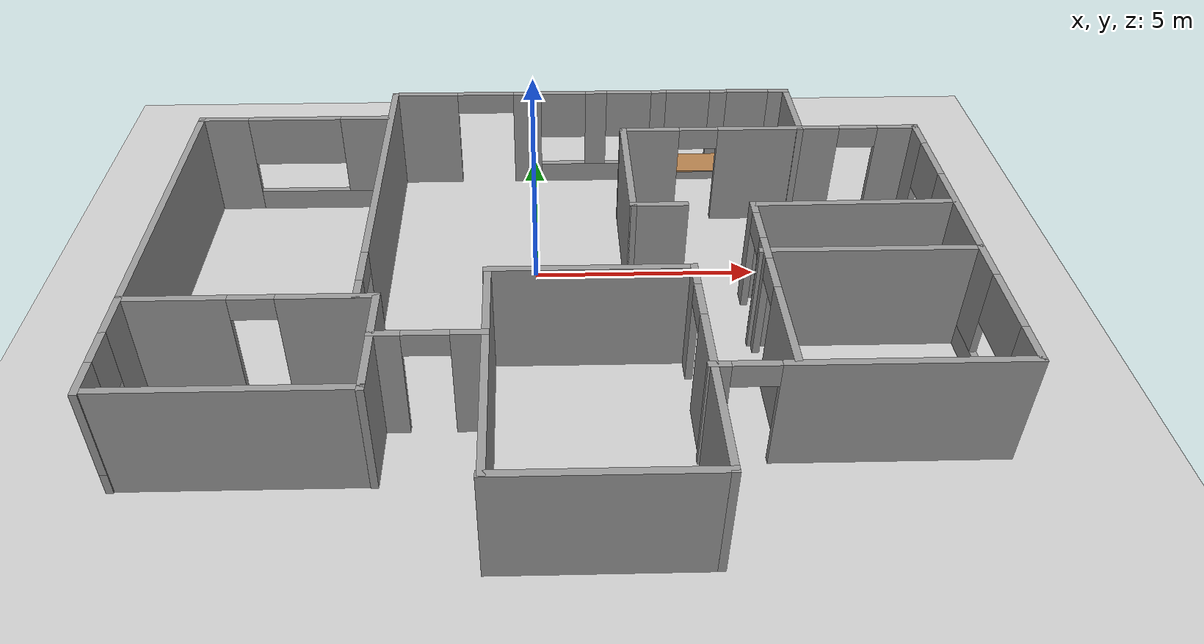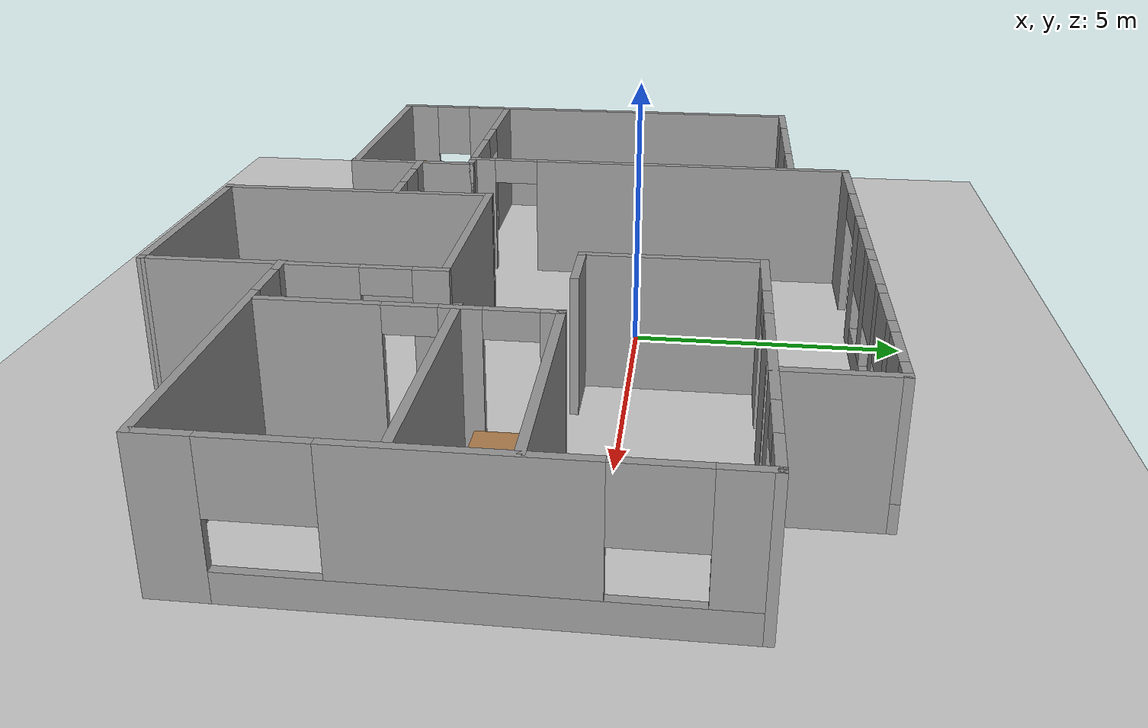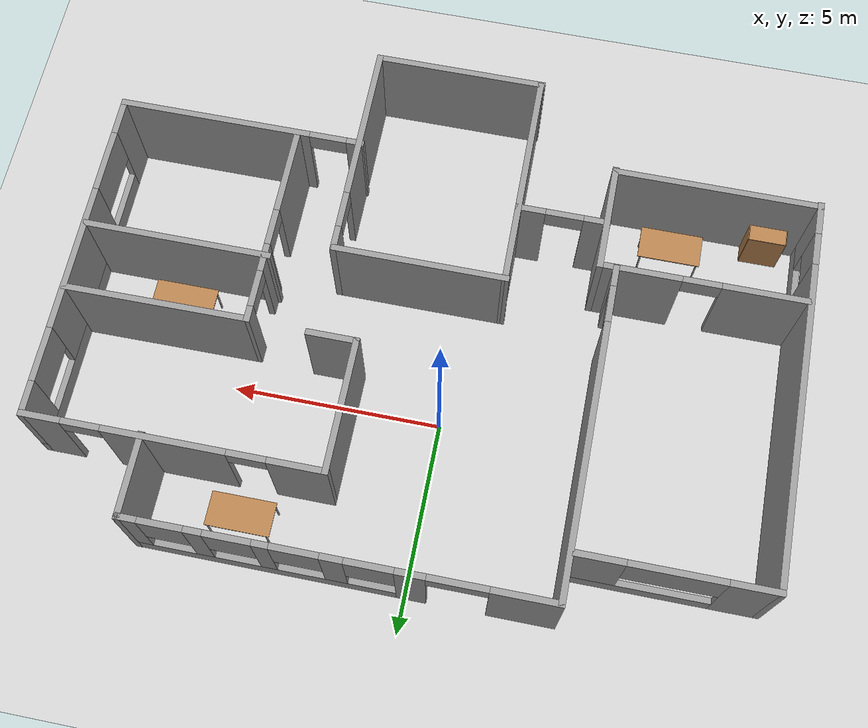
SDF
<sdf version="1.7">
 <world name="default">
  <light name="sun" type="directional">
   <pose>0 0 10 0 -0 0</pose>
   <diffuse>0.8 0.8 0.8 1</diffuse>
   <specular>0.2 0.2 0.2 1</specular>
   <attenuation>
    <range>1000</range>
    <constant>0.9</constant>
    <linear>0.01</linear>
    <quadratic>0.001</quadratic>
   </attenuation>
   <direction>-0.5 0.1 -0.9</direction>
   <spot><inner_angle>0</inner_angle><outer_angle>0</outer_angle><falloff>0</falloff></spot>
  </light>
  <model name="ground_plane">
   <static>1</static>
   <link name="link">
    <collision name="collision">
     <geometry><plane><normal>0 0 1</normal><size>100 100</size></plane></geometry>
     <surface><friction><ode><mu>100</mu><mu2>50</mu2></ode></friction></surface>
    </collision>
    <visual name="visual">
     <cast_shadows>0</cast_shadows>
     <geometry><plane><normal>0 0 1</normal><size>100 100</size></plane></geometry>
     <material>
      <script><uri>file://media/materials/scripts/gazebo.material</uri><name>Gazebo/Grey</name></script>
     </material>
    </visual>
   </link>
  </model>
  <gravity>0 0 -9.8</gravity>
  <magnetic_field>6e-06 2.3e-05 -4.2e-05</magnetic_field>
  <atmosphere type="adiabatic"/>
  <physics type="ode">
   <max_step_size>0.001</max_step_size>
   <real_time_factor>1</real_time_factor>
   <real_time_update_rate>1000</real_time_update_rate>
  </physics>
  <scene><ambient>0.4 0.4 0.4 1</ambient><background>0.7 0.7 0.7 1</background><shadows>1</shadows></scene>
  <audio><device>default</device></audio>
  <spherical_coordinates>
   <surface_model>EARTH_WGS84</surface_model>
   <latitude_deg>0</latitude_deg>
   <longitude_deg>0</longitude_deg>
   <elevation>0</elevation>
   <heading_deg>0</heading_deg>
  </spherical_coordinates>
  <model name="Model_House">
   <pose>0.533179 -2.09036 0 0 -0 0</pose>
   <link name="Wall_0">
    <pose>-8.39134 0.43642 0 0 -0 -1.5708</pose>
    <visual name="Wall_0_Visual_0">
     <pose>-0.81077 0 1.25 0 -0 0</pose>
     <geometry><box><size>7.78806 0.15 2.5</size></box></geometry>
     <material>
      <script><uri>file://media/materials/scripts/gazebo.material</uri><name>Gazebo/Grey</name></script>
      <ambient>1 1 1 1</ambient>
     </material>
     <meta><layer>0</layer></meta>
    </visual>
    <collision name="Wall_0_Collision_0">
     <geometry><box><size>7.78806 0.15 2.5</size></box></geometry>
     <pose>-0.81077 0 1.25 0 -0 0</pose>
    </collision>
    <visual name="Wall_0_Visual_1">
     <pose>3.89403 0 0.25 0 -0 0</pose>
     <geometry><box><size>1.62154 0.15 0.5</size></box></geometry>
     <material>
      <script><uri>file://media/materials/scripts/gazebo.material</uri><name>Gazebo/Grey</name></script>
      <ambient>1 1 1 1</ambient>
     </material>
     <meta><layer>0</layer></meta>
    </visual>
    <collision name="Wall_0_Collision_1">
     <geometry><box><size>1.62154 0.15 0.5</size></box></geometry>
     <pose>3.89403 0 0.25 0 -0 0</pose>
    </collision>
    <visual name="Wall_0_Visual_2">
     <pose>4.29403 0 1.5 0 -0 0</pose>
     <geometry><box><size>0.821541 0.15 2</size></box></geometry>
     <material>
      <script><uri>file://media/materials/scripts/gazebo.material</uri><name>Gazebo/Grey</name></script>
      <ambient>1 1 1 1</ambient>
     </material>
     <meta><layer>0</layer></meta>
    </visual>
    <collision name="Wall_0_Collision_2">
     <geometry><box><size>0.821541 0.15 2</size></box></geometry>
     <pose>4.29403 0 1.5 0 -0 0</pose>
    </collision>
    <visual name="Wall_0_Visual_3">
     <pose>3.48326 0 1.9 0 -0 0</pose>
     <geometry><box><size>0.8 0.15 1.2</size></box></geometry>
     <material>
      <script><uri>file://media/materials/scripts/gazebo.material</uri><name>Gazebo/Grey</name></script>
      <ambient>1 1 1 1</ambient>
     </material>
     <meta><layer>0</layer></meta>
    </visual>
    <collision name="Wall_0_Collision_3">
     <geometry><box><size>0.8 0.15 1.2</size></box></geometry>
     <pose>3.48326 0 1.9 0 -0 0</pose>
    </collision>
   </link>
   <link name="Wall_1">
    <collision name="Wall_1_Collision">
     <geometry><box><size>5 0.15 2.5</size></box></geometry>
     <pose>0 0 1.25 0 -0 0</pose>
    </collision>
    <visual name="Wall_1_Visual">
     <pose>0 0 1.25 0 -0 0</pose>
     <geometry><box><size>5 0.15 2.5</size></box></geometry>
     <material>
      <script><uri>file://media/materials/scripts/gazebo.material</uri><name>Gazebo/Grey</name></script>
      <ambient>1 1 1 1</ambient>
     </material>
     <meta><layer>0</layer></meta>
    </visual>
    <pose>-5.96634 -4.16678 0 0 -0 0</pose>
   </link>
   <link name="Wall_11">
    <pose>-2.5001 -2.78084 0 0 -0 0</pose>
    <visual name="Wall_11_Visual_0">
     <pose>-0.809366 0 1.25 0 -0 0</pose>
     <geometry><box><size>0.631268 0.15 2.5</size></box></geometry>
     <material>
      <script><uri>file://media/materials/scripts/gazebo.material</uri><name>Gazebo/Grey</name></script>
      <ambient>1 1 1 1</ambient>
     </material>
     <meta><layer>0</layer></meta>
    </visual>
    <collision name="Wall_11_Collision_0">
     <geometry><box><size>0.631268 0.15 2.5</size></box></geometry>
     <pose>-0.809366 0 1.25 0 -0 0</pose>
    </collision>
    <visual name="Wall_11_Visual_1">
     <pose>0.765634 0 1.25 0 -0 0</pose>
     <geometry><box><size>0.718732 0.15 2.5</size></box></geometry>
     <material>
      <script><uri>file://media/materials/scripts/gazebo.material</uri><name>Gazebo/Grey</name></script>
      <ambient>1 1 1 1</ambient>
     </material>
     <meta><layer>0</layer></meta>
    </visual>
    <collision name="Wall_11_Collision_1">
     <geometry><box><size>0.718732 0.15 2.5</size></box></geometry>
     <pose>0.765634 0 1.25 0 -0 0</pose>
    </collision>
    <visual name="Wall_11_Visual_2">
     <pose>-0.043732 0 2.25 0 -0 0</pose>
     <geometry><box><size>0.9 0.15 0.5</size></box></geometry>
     <material>
      <script><uri>file://media/materials/scripts/gazebo.material</uri><name>Gazebo/Grey</name></script>
      <ambient>1 1 1 1</ambient>
     </material>
     <meta><layer>0</layer></meta>
    </visual>
    <collision name="Wall_11_Collision_2">
     <geometry><box><size>0.9 0.15 0.5</size></box></geometry>
     <pose>-0.043732 0 2.25 0 -0 0</pose>
    </collision>
   </link>
   <link name="Wall_13">
    <collision name="Wall_13_Collision">
     <geometry><box><size>4.1862 0.15 2.5</size></box></geometry>
     <pose>0 0 1.25 0 -0 0</pose>
    </collision>
    <visual name="Wall_13_Visual">
     <pose>0 0 1.25 0 -0 0</pose>
     <geometry><box><size>4.1862 0.15 2.5</size></box></geometry>
     <material>
      <script><uri>file://media/materials/scripts/gazebo.material</uri><name>Gazebo/Grey</name></script>
      <ambient>1 1 1 1</ambient>
     </material>
     <meta><layer>0</layer></meta>
    </visual>
    <pose>0.576441 -6.18566 0 0 -0 3.14159</pose>
   </link>
   <link name="Wall_14">
    <collision name="Wall_14_Collision">
     <geometry><box><size>5.39848 0.15 2.5</size></box></geometry>
     <pose>0 0 1.25 0 -0 0</pose>
    </collision>
    <visual name="Wall_14_Visual">
     <pose>0 0 1.25 0 -0 0</pose>
     <geometry><box><size>5.39848 0.15 2.5</size></box></geometry>
     <material>
      <script><uri>file://media/materials/scripts/gazebo.material</uri><name>Gazebo/Grey</name></script>
      <ambient>1 1 1 1</ambient>
     </material>
     <meta><layer>0</layer></meta>
    </visual>
    <pose>-1.43992 -3.53494 0 0 -0 1.58027</pose>
   </link>
   <link name="Wall_15">
    <collision name="Wall_15_Collision">
     <geometry><box><size>4.1862 0.15 2.5</size></box></geometry>
     <pose>0 0 1.25 0 -0 0</pose>
    </collision>
    <visual name="Wall_15_Visual">
     <pose>0 0 1.25 0 -0 0</pose>
     <geometry><box><size>4.1862 0.15 2.5</size></box></geometry>
     <material>
      <script><uri>file://media/materials/scripts/gazebo.material</uri><name>Gazebo/Grey</name></script>
      <ambient>1 1 1 1</ambient>
     </material>
     <meta><layer>0</layer></meta>
    </visual>
    <pose>0.53018 -0.910818 0 0 -0 0</pose>
   </link>
   <link name="Wall_16">
    <pose>2.58298 -3.54824 0 0 -0 -1.56641</pose>
    <visual name="Wall_16_Visual_0">
     <pose>-2.39537 0 1.25 0 -0 0</pose>
     <geometry><box><size>0.634919 0.15 2.5</size></box></geometry>
     <material>
      <script><uri>file://media/materials/scripts/gazebo.material</uri><name>Gazebo/Grey</name></script>
      <ambient>1 1 1 1</ambient>
     </material>
     <meta><layer>0</layer></meta>
    </visual>
    <collision name="Wall_16_Collision_0">
     <geometry><box><size>0.634919 0.15 2.5</size></box></geometry>
     <pose>-2.39537 0 1.25 0 -0 0</pose>
    </collision>
    <visual name="Wall_16_Visual_1">
     <pose>0.767459 0 1.25 0 -0 0</pose>
     <geometry><box><size>3.89074 0.15 2.5</size></box></geometry>
     <material>
      <script><uri>file://media/materials/scripts/gazebo.material</uri><name>Gazebo/Grey</name></script>
      <ambient>1 1 1 1</ambient>
     </material>
     <meta><layer>0</layer></meta>
    </visual>
    <collision name="Wall_16_Collision_1">
     <geometry><box><size>3.89074 0.15 2.5</size></box></geometry>
     <pose>0.767459 0 1.25 0 -0 0</pose>
    </collision>
    <visual name="Wall_16_Visual_2">
     <pose>-1.62791 0 2.25 0 -0 0</pose>
     <geometry><box><size>0.9 0.15 0.5</size></box></geometry>
     <material>
      <script><uri>file://media/materials/scripts/gazebo.material</uri><name>Gazebo/Grey</name></script>
      <ambient>1 1 1 1</ambient>
     </material>
     <meta><layer>0</layer></meta>
    </visual>
    <collision name="Wall_16_Collision_2">
     <geometry><box><size>0.9 0.15 0.5</size></box></geometry>
     <pose>-1.62791 0 2.25 0 -0 0</pose>
    </collision>
   </link>
   <link name="Wall_18">
    <pose>5.46634 -3.73845 0 0 -0 0</pose>
    <visual name="Wall_18_Visual_0">
     <pose>-2.7872 0 1.25 0 -0 0</pose>
     <geometry><box><size>0.425608 0.15 2.5</size></box></geometry>
     <material>
      <script><uri>file://media/materials/scripts/gazebo.material</uri><name>Gazebo/Grey</name></script>
      <ambient>1 1 1 1</ambient>
     </material>
     <meta><layer>0</layer></meta>
    </visual>
    <collision name="Wall_18_Collision_0">
     <geometry><box><size>0.425608 0.15 2.5</size></box></geometry>
     <pose>-2.7872 0 1.25 0 -0 0</pose>
    </collision>
    <visual name="Wall_18_Visual_1">
     <pose>0.662804 0 1.25 0 -0 0</pose>
     <geometry><box><size>4.67439 0.15 2.5</size></box></geometry>
     <material>
      <script><uri>file://media/materials/scripts/gazebo.material</uri><name>Gazebo/Grey</name></script>
      <ambient>1 1 1 1</ambient>
     </material>
     <meta><layer>0</layer></meta>
    </visual>
    <collision name="Wall_18_Collision_1">
     <geometry><box><size>4.67439 0.15 2.5</size></box></geometry>
     <pose>0.662804 0 1.25 0 -0 0</pose>
    </collision>
    <visual name="Wall_18_Visual_2">
     <pose>-2.12439 0 2.25 0 -0 0</pose>
     <geometry><box><size>0.9 0.15 0.5</size></box></geometry>
     <material>
      <script><uri>file://media/materials/scripts/gazebo.material</uri><name>Gazebo/Grey</name></script>
      <ambient>1 1 1 1</ambient>
     </material>
     <meta><layer>0</layer></meta>
    </visual>
    <collision name="Wall_18_Collision_2">
     <geometry><box><size>0.9 0.15 0.5</size></box></geometry>
     <pose>-2.12439 0 2.25 0 -0 0</pose>
    </collision>
   </link>
   <link name="Wall_19">
    <pose>8.39134 0.311555 0 0 -0 1.5708</pose>
    <visual name="Wall_19_Visual_0">
     <pose>-3.65111 0 1.25 0 -0 0</pose>
     <geometry><box><size>0.947782 0.15 2.5</size></box></geometry>
     <material>
      <script><uri>file://media/materials/scripts/gazebo.material</uri><name>Gazebo/Grey</name></script>
      <ambient>1 1 1 1</ambient>
     </material>
     <meta><layer>0</layer></meta>
    </visual>
    <collision name="Wall_19_Collision_0">
     <geometry><box><size>0.947782 0.15 2.5</size></box></geometry>
     <pose>-3.65111 0 1.25 0 -0 0</pose>
    </collision>
    <visual name="Wall_19_Visual_1">
     <pose>0.473891 0 0.25 0 -0 0</pose>
     <geometry><box><size>7.30222 0.15 0.5</size></box></geometry>
     <material>
      <script><uri>file://media/materials/scripts/gazebo.material</uri><name>Gazebo/Grey</name></script>
      <ambient>1 1 1 1</ambient>
     </material>
     <meta><layer>0</layer></meta>
    </visual>
    <collision name="Wall_19_Collision_1">
     <geometry><box><size>7.30222 0.15 0.5</size></box></geometry>
     <pose>0.473891 0 0.25 0 -0 0</pose>
    </collision>
    <visual name="Wall_19_Visual_2">
     <pose>0.17254 0 1.5 0 -0 0</pose>
     <geometry><box><size>3.61111 0.15 2</size></box></geometry>
     <material>
      <script><uri>file://media/materials/scripts/gazebo.material</uri><name>Gazebo/Grey</name></script>
      <ambient>1 1 1 1</ambient>
     </material>
     <meta><layer>0</layer></meta>
    </visual>
    <collision name="Wall_19_Collision_2">
     <geometry><box><size>3.61111 0.15 2</size></box></geometry>
     <pose>0.17254 0 1.5 0 -0 0</pose>
    </collision>
    <visual name="Wall_19_Visual_3">
     <pose>3.70455 0 1.5 0 -0 0</pose>
     <geometry><box><size>0.840903 0.15 2</size></box></geometry>
     <material>
      <script><uri>file://media/materials/scripts/gazebo.material</uri><name>Gazebo/Grey</name></script>
      <ambient>1 1 1 1</ambient>
     </material>
     <meta><layer>0</layer></meta>
    </visual>
    <collision name="Wall_19_Collision_3">
     <geometry><box><size>0.840903 0.15 2</size></box></geometry>
     <pose>3.70455 0 1.5 0 -0 0</pose>
    </collision>
    <visual name="Wall_19_Visual_4">
     <pose>-2.40512 0 1.9 0 -0 0</pose>
     <geometry><box><size>1.5442 0.15 1.2</size></box></geometry>
     <material>
      <script><uri>file://media/materials/scripts/gazebo.material</uri><name>Gazebo/Grey</name></script>
      <ambient>1 1 1 1</ambient>
     </material>
     <meta><layer>0</layer></meta>
    </visual>
    <collision name="Wall_19_Collision_4">
     <geometry><box><size>1.5442 0.15 1.2</size></box></geometry>
     <pose>-2.40512 0 1.9 0 -0 0</pose>
    </collision>
    <visual name="Wall_19_Visual_5">
     <pose>2.6311 0 1.9 0 -0 0</pose>
     <geometry><box><size>1.306 0.15 1.2</size></box></geometry>
     <material>
      <script><uri>file://media/materials/scripts/gazebo.material</uri><name>Gazebo/Grey</name></script>
      <ambient>1 1 1 1</ambient>
     </material>
     <meta><layer>0</layer></meta>
    </visual>
    <collision name="Wall_19_Collision_5">
     <geometry><box><size>1.306 0.15 1.2</size></box></geometry>
     <pose>2.6311 0 1.9 0 -0 0</pose>
    </collision>
   </link>
   <link name="Wall_2">
    <collision name="Wall_2_Collision">
     <geometry><box><size>2.6596 0.15 2.5</size></box></geometry>
     <pose>0 0 1.25 0 -0 0</pose>
    </collision>
    <visual name="Wall_2_Visual">
     <pose>0 0 1.25 0 -0 0</pose>
     <geometry><box><size>2.6596 0.15 2.5</size></box></geometry>
     <material>
      <script><uri>file://media/materials/scripts/gazebo.material</uri><name>Gazebo/Grey</name></script>
      <ambient>1 1 1 1</ambient>
     </material>
     <meta><layer>0</layer></meta>
    </visual>
    <pose>-3.54134 -2.93858 0 0 -0 1.5708</pose>
   </link>
   <link name="Wall_20">
    <pose>4.96634 4.36156 0 0 -0 3.14159</pose>
    <visual name="Wall_20_Visual_0">
     <pose>-3.01736 0 1.25 0 -0 0</pose>
     <geometry><box><size>0.965269 0.15 2.5</size></box></geometry>
     <material>
      <script><uri>file://media/materials/scripts/gazebo.material</uri><name>Gazebo/Grey</name></script>
      <ambient>1 1 1 1</ambient>
     </material>
     <meta><layer>0</layer></meta>
    </visual>
    <collision name="Wall_20_Collision_0">
     <geometry><box><size>0.965269 0.15 2.5</size></box></geometry>
     <pose>-3.01736 0 1.25 0 -0 0</pose>
    </collision>
    <visual name="Wall_20_Visual_1">
     <pose>-0.212078 0 1.25 0 -0 0</pose>
     <geometry><box><size>2.84531 0.15 2.5</size></box></geometry>
     <material>
      <script><uri>file://media/materials/scripts/gazebo.material</uri><name>Gazebo/Grey</name></script>
      <ambient>1 1 1 1</ambient>
     </material>
     <meta><layer>0</layer></meta>
    </visual>
    <collision name="Wall_20_Collision_1">
     <geometry><box><size>2.84531 0.15 2.5</size></box></geometry>
     <pose>-0.212078 0 1.25 0 -0 0</pose>
    </collision>
    <visual name="Wall_20_Visual_2">
     <pose>2.80529 0 1.25 0 -0 0</pose>
     <geometry><box><size>1.38943 0.15 2.5</size></box></geometry>
     <material>
      <script><uri>file://media/materials/scripts/gazebo.material</uri><name>Gazebo/Grey</name></script>
      <ambient>1 1 1 1</ambient>
     </material>
     <meta><layer>0</layer></meta>
    </visual>
    <collision name="Wall_20_Collision_2">
     <geometry><box><size>1.38943 0.15 2.5</size></box></geometry>
     <pose>2.80529 0 1.25 0 -0 0</pose>
    </collision>
    <visual name="Wall_20_Visual_3">
     <pose>-2.08473 0 2.25 0 -0 0</pose>
     <geometry><box><size>0.9 0.15 0.5</size></box></geometry>
     <material>
      <script><uri>file://media/materials/scripts/gazebo.material</uri><name>Gazebo/Grey</name></script>
      <ambient>1 1 1 1</ambient>
     </material>
     <meta><layer>0</layer></meta>
    </visual>
    <collision name="Wall_20_Collision_3">
     <geometry><box><size>0.9 0.15 0.5</size></box></geometry>
     <pose>-2.08473 0 2.25 0 -0 0</pose>
    </collision>
    <visual name="Wall_20_Visual_4">
     <pose>1.66057 0 2.25 0 -0 0</pose>
     <geometry><box><size>0.9 0.15 0.5</size></box></geometry>
     <material>
      <script><uri>file://media/materials/scripts/gazebo.material</uri><name>Gazebo/Grey</name></script>
      <ambient>1 1 1 1</ambient>
     </material>
     <meta><layer>0</layer></meta>
    </visual>
    <collision name="Wall_20_Collision_4">
     <geometry><box><size>0.9 0.15 0.5</size></box></geometry>
     <pose>1.66057 0 2.25 0 -0 0</pose>
    </collision>
   </link>
   <link name="Wall_21">
    <collision name="Wall_21_Collision">
     <geometry><box><size>3.25 0.15 2.5</size></box></geometry>
     <pose>0 0 1.25 0 -0 0</pose>
    </collision>
    <visual name="Wall_21_Visual">
     <pose>0 0 1.25 0 -0 0</pose>
     <geometry><box><size>3.25 0.15 2.5</size></box></geometry>
     <material>
      <script><uri>file://media/materials/scripts/gazebo.material</uri><name>Gazebo/Grey</name></script>
      <ambient>1 1 1 1</ambient>
     </material>
     <meta><layer>0</layer></meta>
    </visual>
    <pose>1.54134 2.81155 0 0 -0 -1.5708</pose>
   </link>
   <link name="Wall_22">
    <collision name="Wall_22_Collision">
     <geometry><box><size>1.25 0.15 2.5</size></box></geometry>
     <pose>0 0 1.25 0 -0 0</pose>
    </collision>
    <visual name="Wall_22_Visual">
     <pose>0 0 1.25 0 -0 0</pose>
     <geometry><box><size>1.25 0.15 2.5</size></box></geometry>
     <material>
      <script><uri>file://media/materials/scripts/gazebo.material</uri><name>Gazebo/Grey</name></script>
      <ambient>1 1 1 1</ambient>
     </material>
     <meta><layer>0</layer></meta>
    </visual>
    <pose>2.09134 1.26155 0 0 -0 0</pose>
   </link>
   <link name="Wall_24">
    <pose>4.08415 -1.20704 0 0 -0 1.5708</pose>
    <visual name="Wall_24_Visual_0">
     <pose>-1.44715 0 1.25 0 -0 0</pose>
     <geometry><box><size>2.1057 0.15 2.5</size></box></geometry>
     <material>
      <script><uri>file://media/materials/scripts/gazebo.material</uri><name>Gazebo/Grey</name></script>
      <ambient>1 1 1 1</ambient>
     </material>
     <meta><layer>0</layer></meta>
    </visual>
    <collision name="Wall_24_Collision_0">
     <geometry><box><size>2.1057 0.15 2.5</size></box></geometry>
     <pose>-1.44715 0 1.25 0 -0 0</pose>
    </collision>
    <visual name="Wall_24_Visual_1">
     <pose>0.854946 0 1.25 0 -0 0</pose>
     <geometry><box><size>0.6985 0.15 2.5</size></box></geometry>
     <material>
      <script><uri>file://media/materials/scripts/gazebo.material</uri><name>Gazebo/Grey</name></script>
      <ambient>1 1 1 1</ambient>
     </material>
     <meta><layer>0</layer></meta>
    </visual>
    <collision name="Wall_24_Collision_1">
     <geometry><box><size>0.6985 0.15 2.5</size></box></geometry>
     <pose>0.854946 0 1.25 0 -0 0</pose>
    </collision>
    <visual name="Wall_24_Visual_2">
     <pose>2.3021 0 1.25 0 -0 0</pose>
     <geometry><box><size>0.395804 0.15 2.5</size></box></geometry>
     <material>
      <script><uri>file://media/materials/scripts/gazebo.material</uri><name>Gazebo/Grey</name></script>
      <ambient>1 1 1 1</ambient>
     </material>
     <meta><layer>0</layer></meta>
    </visual>
    <collision name="Wall_24_Collision_2">
     <geometry><box><size>0.395804 0.15 2.5</size></box></geometry>
     <pose>2.3021 0 1.25 0 -0 0</pose>
    </collision>
    <visual name="Wall_24_Visual_3">
     <pose>0.055696 0 2.25 0 -0 0</pose>
     <geometry><box><size>0.9 0.15 0.5</size></box></geometry>
     <material>
      <script><uri>file://media/materials/scripts/gazebo.material</uri><name>Gazebo/Grey</name></script>
      <ambient>1 1 1 1</ambient>
     </material>
     <meta><layer>0</layer></meta>
    </visual>
    <collision name="Wall_24_Collision_3">
     <geometry><box><size>0.9 0.15 0.5</size></box></geometry>
     <pose>0.055696 0 2.25 0 -0 0</pose>
    </collision>
    <visual name="Wall_24_Visual_4">
     <pose>1.6542 0 2.25 0 -0 0</pose>
     <geometry><box><size>0.9 0.15 0.5</size></box></geometry>
     <material>
      <script><uri>file://media/materials/scripts/gazebo.material</uri><name>Gazebo/Grey</name></script>
      <ambient>1 1 1 1</ambient>
     </material>
     <meta><layer>0</layer></meta>
    </visual>
    <collision name="Wall_24_Collision_4">
     <geometry><box><size>0.9 0.15 0.5</size></box></geometry>
     <pose>1.6542 0 2.25 0 -0 0</pose>
    </collision>
   </link>
   <link name="Wall_25">
    <collision name="Wall_25_Collision">
     <geometry><box><size>4.39368 0.15 2.5</size></box></geometry>
     <pose>0 0 1.25 0 -0 0</pose>
    </collision>
    <visual name="Wall_25_Visual">
     <pose>0 0 1.25 0 -0 0</pose>
     <geometry><box><size>4.39368 0.15 2.5</size></box></geometry>
     <material>
      <script><uri>file://media/materials/scripts/gazebo.material</uri><name>Gazebo/Grey</name></script>
      <ambient>1 1 1 1</ambient>
     </material>
     <meta><layer>0</layer></meta>
    </visual>
    <pose>6.23255 1.23126 0 0 -0 0.006268</pose>
   </link>
   <link name="Wall_27">
    <collision name="Wall_27_Collision">
     <geometry><box><size>4.5 0.15 2.5</size></box></geometry>
     <pose>0 0 1.25 0 -0 0</pose>
    </collision>
    <visual name="Wall_27_Visual">
     <pose>0 0 1.25 0 -0 0</pose>
     <geometry><box><size>4.5 0.15 2.5</size></box></geometry>
     <material>
      <script><uri>file://media/materials/scripts/gazebo.material</uri><name>Gazebo/Grey</name></script>
      <ambient>1 1 1 1</ambient>
     </material>
     <meta><layer>0</layer></meta>
    </visual>
    <pose>6.17935 -0.41342 0 0 -0 0</pose>
   </link>
   <link name="Wall_3">
    <pose>-5.96634 -1.68378 0 0 -0 3.14159</pose>
    <visual name="Wall_3_Visual_0">
     <pose>-1.50568 0 1.25 0 -0 0</pose>
     <geometry><box><size>1.98863 0.15 2.5</size></box></geometry>
     <material>
      <script><uri>file://media/materials/scripts/gazebo.material</uri><name>Gazebo/Grey</name></script>
      <ambient>1 1 1 1</ambient>
     </material>
     <meta><layer>0</layer></meta>
    </visual>
    <collision name="Wall_3_Collision_0">
     <geometry><box><size>1.98863 0.15 2.5</size></box></geometry>
     <pose>-1.50568 0 1.25 0 -0 0</pose>
    </collision>
    <visual name="Wall_3_Visual_1">
     <pose>1.44432 0 1.25 0 -0 0</pose>
     <geometry><box><size>2.11137 0.15 2.5</size></box></geometry>
     <material>
      <script><uri>file://media/materials/scripts/gazebo.material</uri><name>Gazebo/Grey</name></script>
      <ambient>1 1 1 1</ambient>
     </material>
     <meta><layer>0</layer></meta>
    </visual>
    <collision name="Wall_3_Collision_1">
     <geometry><box><size>2.11137 0.15 2.5</size></box></geometry>
     <pose>1.44432 0 1.25 0 -0 0</pose>
    </collision>
    <visual name="Wall_3_Visual_2">
     <pose>-0.06137 0 2.25 0 -0 0</pose>
     <geometry><box><size>0.9 0.15 0.5</size></box></geometry>
     <material>
      <script><uri>file://media/materials/scripts/gazebo.material</uri><name>Gazebo/Grey</name></script>
      <ambient>1 1 1 1</ambient>
     </material>
     <meta><layer>0</layer></meta>
    </visual>
    <collision name="Wall_3_Collision_2">
     <geometry><box><size>0.9 0.15 0.5</size></box></geometry>
     <pose>-0.06137 0 2.25 0 -0 0</pose>
    </collision>
   </link>
   <link name="Wall_5">
    <pose>-3.92251 2.26137 0 0 -0 1.5708</pose>
    <visual name="Wall_5_Visual_0">
     <pose>-3.73238 0 1.25 0 -0 0</pose>
     <geometry><box><size>0.535248 0.15 2.5</size></box></geometry>
     <material>
      <script><uri>file://media/materials/scripts/gazebo.material</uri><name>Gazebo/Grey</name></script>
      <ambient>1 1 1 1</ambient>
     </material>
     <meta><layer>0</layer></meta>
    </visual>
    <collision name="Wall_5_Collision_0">
     <geometry><box><size>0.535248 0.15 2.5</size></box></geometry>
     <pose>-3.73238 0 1.25 0 -0 0</pose>
    </collision>
    <visual name="Wall_5_Visual_1">
     <pose>0.717624 0 1.25 0 -0 0</pose>
     <geometry><box><size>6.56475 0.15 2.5</size></box></geometry>
     <material>
      <script><uri>file://media/materials/scripts/gazebo.material</uri><name>Gazebo/Grey</name></script>
      <ambient>1 1 1 1</ambient>
     </material>
     <meta><layer>0</layer></meta>
    </visual>
    <collision name="Wall_5_Collision_1">
     <geometry><box><size>6.56475 0.15 2.5</size></box></geometry>
     <pose>0.717624 0 1.25 0 -0 0</pose>
    </collision>
    <visual name="Wall_5_Visual_2">
     <pose>-3.01475 0 2.25 0 -0 0</pose>
     <geometry><box><size>0.9 0.15 0.5</size></box></geometry>
     <material>
      <script><uri>file://media/materials/scripts/gazebo.material</uri><name>Gazebo/Grey</name></script>
      <ambient>1 1 1 1</ambient>
     </material>
     <meta><layer>0</layer></meta>
    </visual>
    <collision name="Wall_5_Collision_2">
     <geometry><box><size>0.9 0.15 0.5</size></box></geometry>
     <pose>-3.01475 0 2.25 0 -0 0</pose>
    </collision>
   </link>
   <link name="Wall_6">
    <pose>0.877493 6.18637 0 0 -0 0</pose>
    <visual name="Wall_6_Visual_0">
     <pose>-4.07821 0 1.25 0 -0 0</pose>
     <geometry><box><size>1.59357 0.15 2.5</size></box></geometry>
     <material>
      <script><uri>file://media/materials/scripts/gazebo.material</uri><name>Gazebo/Grey</name></script>
      <ambient>1 1 1 1</ambient>
     </material>
     <meta><layer>0</layer></meta>
    </visual>
    <collision name="Wall_6_Collision_0">
     <geometry><box><size>1.59357 0.15 2.5</size></box></geometry>
     <pose>-4.07821 0 1.25 0 -0 0</pose>
    </collision>
    <visual name="Wall_6_Visual_1">
     <pose>-1.57769 0 1.25 0 -0 0</pose>
     <geometry><box><size>0.682242 0.15 2.5</size></box></geometry>
     <material>
      <script><uri>file://media/materials/scripts/gazebo.material</uri><name>Gazebo/Grey</name></script>
      <ambient>1 1 1 1</ambient>
     </material>
     <meta><layer>0</layer></meta>
    </visual>
    <collision name="Wall_6_Collision_1">
     <geometry><box><size>0.682242 0.15 2.5</size></box></geometry>
     <pose>-1.57769 0 1.25 0 -0 0</pose>
    </collision>
    <visual name="Wall_6_Visual_2">
     <pose>1.81922 0 0.25 0 -0 0</pose>
     <geometry><box><size>6.11157 0.15 0.5</size></box></geometry>
     <material>
      <script><uri>file://media/materials/scripts/gazebo.material</uri><name>Gazebo/Grey</name></script>
      <ambient>1 1 1 1</ambient>
     </material>
     <meta><layer>0</layer></meta>
    </visual>
    <collision name="Wall_6_Collision_2">
     <geometry><box><size>6.11157 0.15 0.5</size></box></geometry>
     <pose>1.81922 0 0.25 0 -0 0</pose>
    </collision>
    <visual name="Wall_6_Visual_3">
     <pose>0.121254 0 1.5 0 -0 0</pose>
     <geometry><box><size>0.517649 0.15 2</size></box></geometry>
     <material>
      <script><uri>file://media/materials/scripts/gazebo.material</uri><name>Gazebo/Grey</name></script>
      <ambient>1 1 1 1</ambient>
     </material>
     <meta><layer>0</layer></meta>
    </visual>
    <collision name="Wall_6_Collision_3">
     <geometry><box><size>0.517649 0.15 2</size></box></geometry>
     <pose>0.121254 0 1.5 0 -0 0</pose>
    </collision>
    <visual name="Wall_6_Visual_4">
     <pose>1.66558 0 1.5 0 -0 0</pose>
     <geometry><box><size>0.373 0.15 2</size></box></geometry>
     <material>
      <script><uri>file://media/materials/scripts/gazebo.material</uri><name>Gazebo/Grey</name></script>
      <ambient>1 1 1 1</ambient>
     </material>
     <meta><layer>0</layer></meta>
    </visual>
    <collision name="Wall_6_Collision_4">
     <geometry><box><size>0.373 0.15 2</size></box></geometry>
     <pose>1.66558 0 1.5 0 -0 0</pose>
    </collision>
    <visual name="Wall_6_Visual_5">
     <pose>3.13758 0 1.5 0 -0 0</pose>
     <geometry><box><size>0.419 0.15 2</size></box></geometry>
     <material>
      <script><uri>file://media/materials/scripts/gazebo.material</uri><name>Gazebo/Grey</name></script>
      <ambient>1 1 1 1</ambient>
     </material>
     <meta><layer>0</layer></meta>
    </visual>
    <collision name="Wall_6_Collision_5">
     <geometry><box><size>0.419 0.15 2</size></box></geometry>
     <pose>3.13758 0 1.5 0 -0 0</pose>
    </collision>
    <visual name="Wall_6_Visual_6">
     <pose>4.62029 0 1.5 0 -0 0</pose>
     <geometry><box><size>0.509421 0.15 2</size></box></geometry>
     <material>
      <script><uri>file://media/materials/scripts/gazebo.material</uri><name>Gazebo/Grey</name></script>
      <ambient>1 1 1 1</ambient>
     </material>
     <meta><layer>0</layer></meta>
    </visual>
    <collision name="Wall_6_Collision_6">
     <geometry><box><size>0.509421 0.15 2</size></box></geometry>
     <pose>4.62029 0 1.5 0 -0 0</pose>
    </collision>
    <visual name="Wall_6_Visual_7">
     <pose>-0.68707 0 1.9 0 -0 0</pose>
     <geometry><box><size>1.099 0.15 1.2</size></box></geometry>
     <material>
      <script><uri>file://media/materials/scripts/gazebo.material</uri><name>Gazebo/Grey</name></script>
      <ambient>1 1 1 1</ambient>
     </material>
     <meta><layer>0</layer></meta>
    </visual>
    <collision name="Wall_6_Collision_7">
     <geometry><box><size>1.099 0.15 1.2</size></box></geometry>
     <pose>-0.68707 0 1.9 0 -0 0</pose>
    </collision>
    <visual name="Wall_6_Visual_8">
     <pose>0.929579 0 1.9 0 -0 0</pose>
     <geometry><box><size>1.099 0.15 1.2</size></box></geometry>
     <material>
      <script><uri>file://media/materials/scripts/gazebo.material</uri><name>Gazebo/Grey</name></script>
      <ambient>1 1 1 1</ambient>
     </material>
     <meta><layer>0</layer></meta>
    </visual>
    <collision name="Wall_6_Collision_8">
     <geometry><box><size>1.099 0.15 1.2</size></box></geometry>
     <pose>0.929579 0 1.9 0 -0 0</pose>
    </collision>
    <visual name="Wall_6_Visual_9">
     <pose>2.39008 0 1.9 0 -0 0</pose>
     <geometry><box><size>1.076 0.15 1.2</size></box></geometry>
     <material>
      <script><uri>file://media/materials/scripts/gazebo.material</uri><name>Gazebo/Grey</name></script>
      <ambient>1 1 1 1</ambient>
     </material>
     <meta><layer>0</layer></meta>
    </visual>
    <collision name="Wall_6_Collision_9">
     <geometry><box><size>1.076 0.15 1.2</size></box></geometry>
     <pose>2.39008 0 1.9 0 -0 0</pose>
    </collision>
    <visual name="Wall_6_Visual_10">
     <pose>3.85633 0 1.9 0 -0 0</pose>
     <geometry><box><size>1.0185 0.15 1.2</size></box></geometry>
     <material>
      <script><uri>file://media/materials/scripts/gazebo.material</uri><name>Gazebo/Grey</name></script>
      <ambient>1 1 1 1</ambient>
     </material>
     <meta><layer>0</layer></meta>
    </visual>
    <collision name="Wall_6_Collision_10">
     <geometry><box><size>1.0185 0.15 1.2</size></box></geometry>
     <pose>3.85633 0 1.9 0 -0 0</pose>
    </collision>
    <visual name="Wall_6_Visual_11">
     <pose>-2.60012 0 2.25 0 -0 0</pose>
     <geometry><box><size>1.36261 0.15 0.5</size></box></geometry>
     <material>
      <script><uri>file://media/materials/scripts/gazebo.material</uri><name>Gazebo/Grey</name></script>
      <ambient>1 1 1 1</ambient>
     </material>
     <meta><layer>0</layer></meta>
    </visual>
    <collision name="Wall_6_Collision_11">
     <geometry><box><size>1.36261 0.15 0.5</size></box></geometry>
     <pose>-2.60012 0 2.25 0 -0 0</pose>
    </collision>
   </link>
   <link name="Wall_7">
    <collision name="Wall_7_Collision">
     <geometry><box><size>2 0.15 2.5</size></box></geometry>
     <pose>0 0 1.25 0 -0 0</pose>
    </collision>
    <visual name="Wall_7_Visual">
     <pose>0 0 1.25 0 -0 0</pose>
     <geometry><box><size>2 0.15 2.5</size></box></geometry>
     <material>
      <script><uri>file://media/materials/scripts/gazebo.material</uri><name>Gazebo/Grey</name></script>
      <ambient>1 1 1 1</ambient>
     </material>
     <meta><layer>0</layer></meta>
    </visual>
    <pose>5.67749 5.26137 0 0 -0 -1.5708</pose>
   </link>
   <link name="Wall_9">
    <pose>-6.21634 5.06622 0 0 -0 0</pose>
    <visual name="Wall_9_Visual_0">
     <pose>-1.66274 0 1.25 0 -0 0</pose>
     <geometry><box><size>1.17453 0.15 2.5</size></box></geometry>
     <material>
      <script><uri>file://media/materials/scripts/gazebo.material</uri><name>Gazebo/Grey</name></script>
      <ambient>1 1 1 1</ambient>
     </material>
     <meta><layer>0</layer></meta>
    </visual>
    <collision name="Wall_9_Collision_0">
     <geometry><box><size>1.17453 0.15 2.5</size></box></geometry>
     <pose>-1.66274 0 1.25 0 -0 0</pose>
    </collision>
    <visual name="Wall_9_Visual_1">
     <pose>0.587263 0 0.25 0 -0 0</pose>
     <geometry><box><size>3.32547 0.15 0.5</size></box></geometry>
     <material>
      <script><uri>file://media/materials/scripts/gazebo.material</uri><name>Gazebo/Grey</name></script>
      <ambient>1 1 1 1</ambient>
     </material>
     <meta><layer>0</layer></meta>
    </visual>
    <collision name="Wall_9_Collision_1">
     <geometry><box><size>3.32547 0.15 0.5</size></box></geometry>
     <pose>0.587263 0 0.25 0 -0 0</pose>
    </collision>
    <visual name="Wall_9_Visual_2">
     <pose>1.67112 0 1.5 0 -0 0</pose>
     <geometry><box><size>1.15775 0.15 2</size></box></geometry>
     <material>
      <script><uri>file://media/materials/scripts/gazebo.material</uri><name>Gazebo/Grey</name></script>
      <ambient>1 1 1 1</ambient>
     </material>
     <meta><layer>0</layer></meta>
    </visual>
    <collision name="Wall_9_Collision_2">
     <geometry><box><size>1.15775 0.15 2</size></box></geometry>
     <pose>1.67112 0 1.5 0 -0 0</pose>
    </collision>
    <visual name="Wall_9_Visual_3">
     <pose>0.008388 0 1.9 0 -0 0</pose>
     <geometry><box><size>2.16772 0.15 1.2</size></box></geometry>
     <material>
      <script><uri>file://media/materials/scripts/gazebo.material</uri><name>Gazebo/Grey</name></script>
      <ambient>1 1 1 1</ambient>
     </material>
     <meta><layer>0</layer></meta>
    </visual>
    <collision name="Wall_9_Collision_3">
     <geometry><box><size>2.16772 0.15 1.2</size></box></geometry>
     <pose>0.008388 0 1.9 0 -0 0</pose>
    </collision>
   </link>
   <static>1</static>
  </model>
  <model name="table">
   <static>1</static>
   <link name="link">
    <collision name="surface">
     <pose>0 0 1 0 -0 0</pose>
     <geometry><box><size>1.5 0.8 0.03</size></box></geometry>
     <surface><friction><ode><mu>0.6</mu><mu2>0.6</mu2></ode></friction></surface>
    </collision>
    <visual name="visual1">
     <pose>0 0 1 0 -0 0</pose>
     <geometry><box><size>1.5 0.8 0.03</size></box></geometry>
     <material>
      <script><uri>file://media/materials/scripts/gazebo.material</uri><name>Gazebo/Wood</name></script>
     </material>
    </visual>
    <collision name="front_left_leg">
     <pose>0.68 0.38 0.5 0 -0 0</pose>
     <geometry><cylinder><radius>0.02</radius><length>1</length></cylinder></geometry>
    </collision>
    <visual name="front_left_leg">
     <pose>0.68 0.38 0.5 0 -0 0</pose>
     <geometry><cylinder><radius>0.02</radius><length>1</length></cylinder></geometry>
     <material>
      <script><uri>file://media/materials/scripts/gazebo.material</uri><name>Gazebo/Grey</name></script>
     </material>
    </visual>
    <collision name="front_right_leg">
     <pose>0.68 -0.38 0.5 0 -0 0</pose>
     <geometry><cylinder><radius>0.02</radius><length>1</length></cylinder></geometry>
    </collision>
    <visual name="front_right_leg">
     <pose>0.68 -0.38 0.5 0 -0 0</pose>
     <geometry><cylinder><radius>0.02</radius><length>1</length></cylinder></geometry>
     <material>
      <script><uri>file://media/materials/scripts/gazebo.material</uri><name>Gazebo/Grey</name></script>
     </material>
    </visual>
    <collision name="back_right_leg">
     <pose>-0.68 -0.38 0.5 0 -0 0</pose>
     <geometry><cylinder><radius>0.02</radius><length>1</length></cylinder></geometry>
    </collision>
    <visual name="back_right_leg">
     <pose>-0.68 -0.38 0.5 0 -0 0</pose>
     <geometry><cylinder><radius>0.02</radius><length>1</length></cylinder></geometry>
     <material>
      <script><uri>file://media/materials/scripts/gazebo.material</uri><name>Gazebo/Grey</name></script>
     </material>
    </visual>
    <collision name="back_left_leg">
     <pose>-0.68 0.38 0.5 0 -0 0</pose>
     <geometry><cylinder><radius>0.02</radius><length>1</length></cylinder></geometry>
    </collision>
    <visual name="back_left_leg">
     <pose>-0.68 0.38 0.5 0 -0 0</pose>
     <geometry><cylinder><radius>0.02</radius><length>1</length></cylinder></geometry>
     <material>
      <script><uri>file://media/materials/scripts/gazebo.material</uri><name>Gazebo/Grey</name></script>
     </material>
    </visual>
   </link>
   <pose>3.92485 3.1982 0 0 -0 0</pose>
  </model>
  <model name="table_0">
   <static>1</static>
   <link name="link">
    <collision name="surface">
     <pose>0 0 1 0 -0 0</pose>
     <geometry><box><size>1.5 0.8 0.03</size></box></geometry>
     <surface><friction><ode><mu>0.6</mu><mu2>0.6</mu2></ode></friction></surface>
    </collision>
    <visual name="visual1">
     <pose>0 0 1 0 -0 0</pose>
     <geometry><box><size>1.5 0.8 0.03</size></box></geometry>
     <material>
      <script><uri>file://media/materials/scripts/gazebo.material</uri><name>Gazebo/Wood</name></script>
     </material>
    </visual>
    <collision name="front_left_leg">
     <pose>0.68 0.38 0.5 0 -0 0</pose>
     <geometry><cylinder><radius>0.02</radius><length>1</length></cylinder></geometry>
    </collision>
    <visual name="front_left_leg">
     <pose>0.68 0.38 0.5 0 -0 0</pose>
     <geometry><cylinder><radius>0.02</radius><length>1</length></cylinder></geometry>
     <material>
      <script><uri>file://media/materials/scripts/gazebo.material</uri><name>Gazebo/Grey</name></script>
     </material>
    </visual>
    <collision name="front_right_leg">
     <pose>0.68 -0.38 0.5 0 -0 0</pose>
     <geometry><cylinder><radius>0.02</radius><length>1</length></cylinder></geometry>
    </collision>
    <visual name="front_right_leg">
     <pose>0.68 -0.38 0.5 0 -0 0</pose>
     <geometry><cylinder><radius>0.02</radius><length>1</length></cylinder></geometry>
     <material>
      <script><uri>file://media/materials/scripts/gazebo.material</uri><name>Gazebo/Grey</name></script>
     </material>
    </visual>
    <collision name="back_right_leg">
     <pose>-0.68 -0.38 0.5 0 -0 0</pose>
     <geometry><cylinder><radius>0.02</radius><length>1</length></cylinder></geometry>
    </collision>
    <visual name="back_right_leg">
     <pose>-0.68 -0.38 0.5 0 -0 0</pose>
     <geometry><cylinder><radius>0.02</radius><length>1</length></cylinder></geometry>
     <material>
      <script><uri>file://media/materials/scripts/gazebo.material</uri><name>Gazebo/Grey</name></script>
     </material>
    </visual>
    <collision name="back_left_leg">
     <pose>-0.68 0.38 0.5 0 -0 0</pose>
     <geometry><cylinder><radius>0.02</radius><length>1</length></cylinder></geometry>
    </collision>
    <visual name="back_left_leg">
     <pose>-0.68 0.38 0.5 0 -0 0</pose>
     <geometry><cylinder><radius>0.02</radius><length>1</length></cylinder></geometry>
     <material>
      <script><uri>file://media/materials/scripts/gazebo.material</uri><name>Gazebo/Grey</name></script>
     </material>
    </visual>
   </link>
   <pose>-4.67931 -5.31236 0 0 -0 0</pose>
  </model>
  <model name="bookshelf">
   <static>1</static>
   <link name="link">
    <inertial><mass>1</mass></inertial>
    <collision name="back">
     <pose>0 0.005 0.6 0 -0 0</pose>
     <geometry><box><size>0.9 0.01 1.2</size></box></geometry>
    </collision>
    <visual name="visual1">
     <pose>0 0.005 0.6 0 -0 0</pose>
     <geometry><box><size>0.9 0.01 1.2</size></box></geometry>
     <material>
      <script><uri>file://media/materials/scripts/gazebo.material</uri><name>Gazebo/Wood</name></script>
     </material>
    </visual>
    <collision name="left_side">
     <pose>0.45 -0.195 0.6 0 -0 0</pose>
     <geometry><box><size>0.02 0.4 1.2</size></box></geometry>
    </collision>
    <visual name="visual2">
     <pose>0.45 -0.195 0.6 0 -0 0</pose>
     <geometry><box><size>0.02 0.4 1.2</size></box></geometry>
     <material>
      <script><uri>file://media/materials/scripts/gazebo.material</uri><name>Gazebo/Wood</name></script>
     </material>
    </visual>
    <collision name="right_side">
     <pose>-0.45 -0.195 0.6 0 -0 0</pose>
     <geometry><box><size>0.02 0.4 1.2</size></box></geometry>
    </collision>
    <visual name="visual3">
     <pose>-0.45 -0.195 0.6 0 -0 0</pose>
     <geometry><box><size>0.02 0.4 1.2</size></box></geometry>
     <material>
      <script><uri>file://media/materials/scripts/gazebo.material</uri><name>Gazebo/Wood</name></script>
     </material>
    </visual>
    <collision name="bottom">
     <pose>0 -0.195 0.03 0 -0 0</pose>
     <geometry><box><size>0.88 0.4 0.06</size></box></geometry>
    </collision>
    <visual name="visual4">
     <pose>0 -0.195 0.03 0 -0 0</pose>
     <geometry><box><size>0.88 0.4 0.06</size></box></geometry>
     <material>
      <script><uri>file://media/materials/scripts/gazebo.material</uri><name>Gazebo/Wood</name></script>
     </material>
    </visual>
    <collision name="top">
     <pose>0 -0.195 1.19 0 -0 0</pose>
     <geometry><box><size>0.88 0.4 0.02</size></box></geometry>
    </collision>
    <visual name="visual5">
     <pose>0 -0.195 1.19 0 -0 0</pose>
     <geometry><box><size>0.88 0.4 0.02</size></box></geometry>
     <material>
      <script><uri>file://media/materials/scripts/gazebo.material</uri><name>Gazebo/Wood</name></script>
     </material>
    </visual>
    <collision name="low_shelf">
     <pose>0 -0.195 0.43 0 -0 0</pose>
     <geometry><box><size>0.88 0.4 0.02</size></box></geometry>
    </collision>
    <visual name="visual6">
     <pose>0 -0.195 0.43 0 -0 0</pose>
     <geometry><box><size>0.88 0.4 0.02</size></box></geometry>
     <material>
      <script><uri>file://media/materials/scripts/gazebo.material</uri><name>Gazebo/Wood</name></script>
     </material>
    </visual>
    <collision name="high_shelf">
     <pose>0 -0.195 0.8 0 -0 0</pose>
     <geometry><box><size>0.88 0.4 0.02</size></box></geometry>
    </collision>
    <visual name="visual7">
     <pose>0 -0.195 0.8 0 -0 0</pose>
     <geometry><box><size>0.88 0.4 0.02</size></box></geometry>
     <material>
      <script><uri>file://media/materials/scripts/gazebo.material</uri><name>Gazebo/Wood</name></script>
     </material>
    </visual>
   </link>
   <pose>-6.95236 -5.79071 0 0 -0 0</pose>
  </model>
  <model name="table_1">
   <static>1</static>
   <link name="link">
    <collision name="surface">
     <pose>0 0 1 0 -0 0</pose>
     <geometry><box><size>1.5 0.8 0.03</size></box></geometry>
     <surface><friction><ode><mu>0.6</mu><mu2>0.6</mu2></ode></friction></surface>
    </collision>
    <visual name="visual1">
     <pose>0 0 1 0 -0 0</pose>
     <geometry><box><size>1.5 0.8 0.03</size></box></geometry>
     <material>
      <script><uri>file://media/materials/scripts/gazebo.material</uri><name>Gazebo/Wood</name></script>
     </material>
    </visual>
    <collision name="front_left_leg">
     <pose>0.68 0.38 0.5 0 -0 0</pose>
     <geometry><cylinder><radius>0.02</radius><length>1</length></cylinder></geometry>
    </collision>
    <visual name="front_left_leg">
     <pose>0.68 0.38 0.5 0 -0 0</pose>
     <geometry><cylinder><radius>0.02</radius><length>1</length></cylinder></geometry>
     <material>
      <script><uri>file://media/materials/scripts/gazebo.material</uri><name>Gazebo/Grey</name></script>
     </material>
    </visual>
    <collision name="front_right_leg">
     <pose>0.68 -0.38 0.5 0 -0 0</pose>
     <geometry><cylinder><radius>0.02</radius><length>1</length></cylinder></geometry>
    </collision>
    <visual name="front_right_leg">
     <pose>0.68 -0.38 0.5 0 -0 0</pose>
     <geometry><cylinder><radius>0.02</radius><length>1</length></cylinder></geometry>
     <material>
      <script><uri>file://media/materials/scripts/gazebo.material</uri><name>Gazebo/Grey</name></script>
     </material>
    </visual>
    <collision name="back_right_leg">
     <pose>-0.68 -0.38 0.5 0 -0 0</pose>
     <geometry><cylinder><radius>0.02</radius><length>1</length></cylinder></geometry>
    </collision>
    <visual name="back_right_leg">
     <pose>-0.68 -0.38 0.5 0 -0 0</pose>
     <geometry><cylinder><radius>0.02</radius><length>1</length></cylinder></geometry>
     <material>
      <script><uri>file://media/materials/scripts/gazebo.material</uri><name>Gazebo/Grey</name></script>
     </material>
    </visual>
    <collision name="back_left_leg">
     <pose>-0.68 0.38 0.5 0 -0 0</pose>
     <geometry><cylinder><radius>0.02</radius><length>1</length></cylinder></geometry>
    </collision>
    <visual name="back_left_leg">
     <pose>-0.68 0.38 0.5 0 -0 0</pose>
     <geometry><cylinder><radius>0.02</radius><length>1</length></cylinder></geometry>
     <material>
      <script><uri>file://media/materials/scripts/gazebo.material</uri><name>Gazebo/Grey</name></script>
     </material>
    </visual>
   </link>
   <pose>6.5572 -1.63696 0 0 -0 0</pose>
  </model>
 </world>
</sdf>
